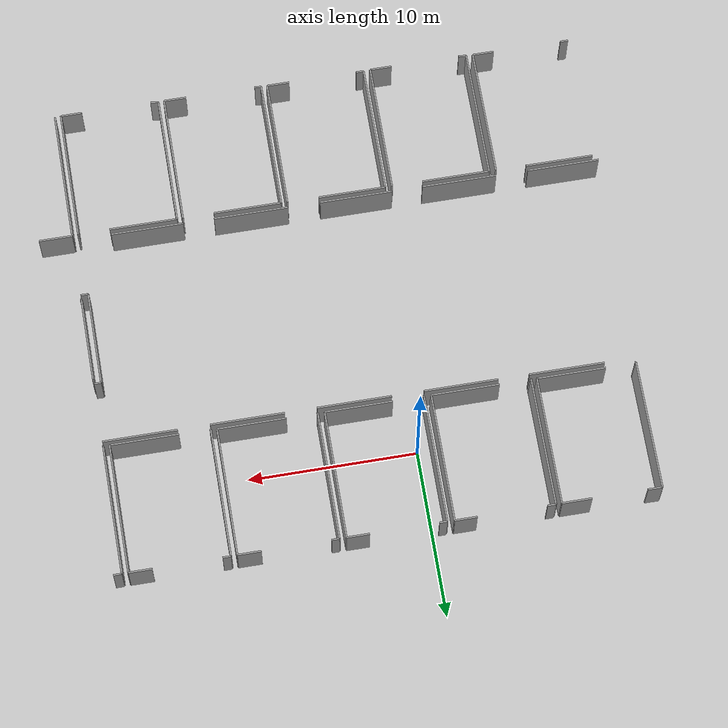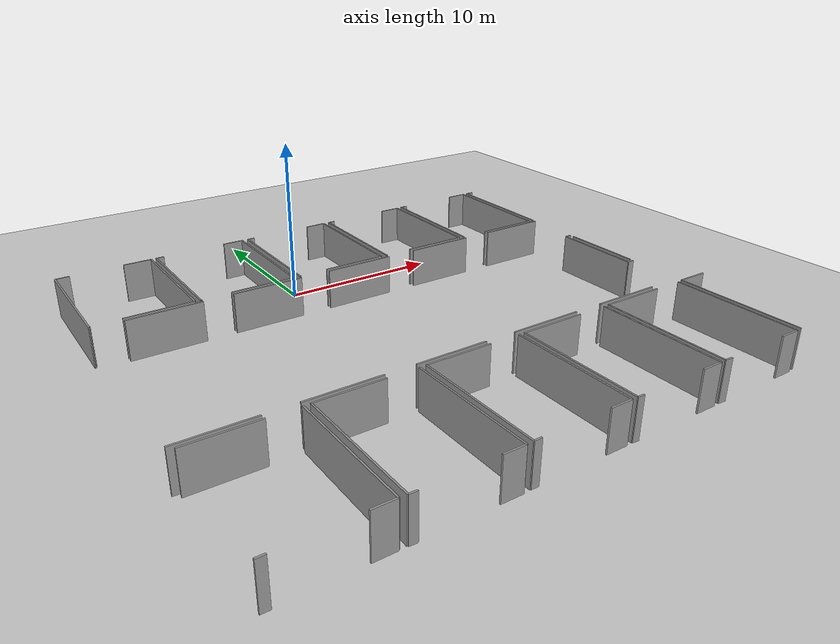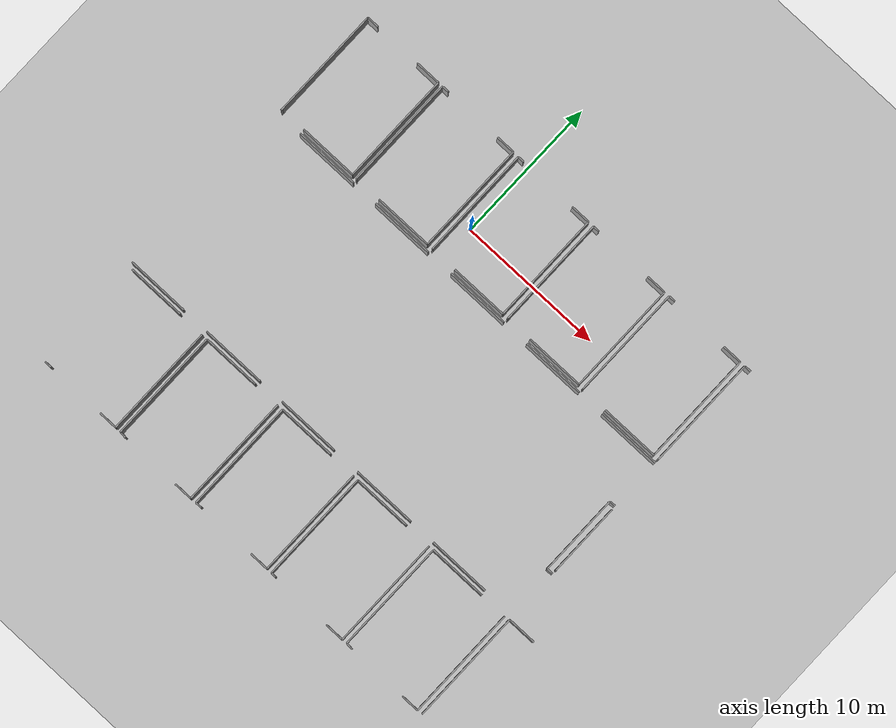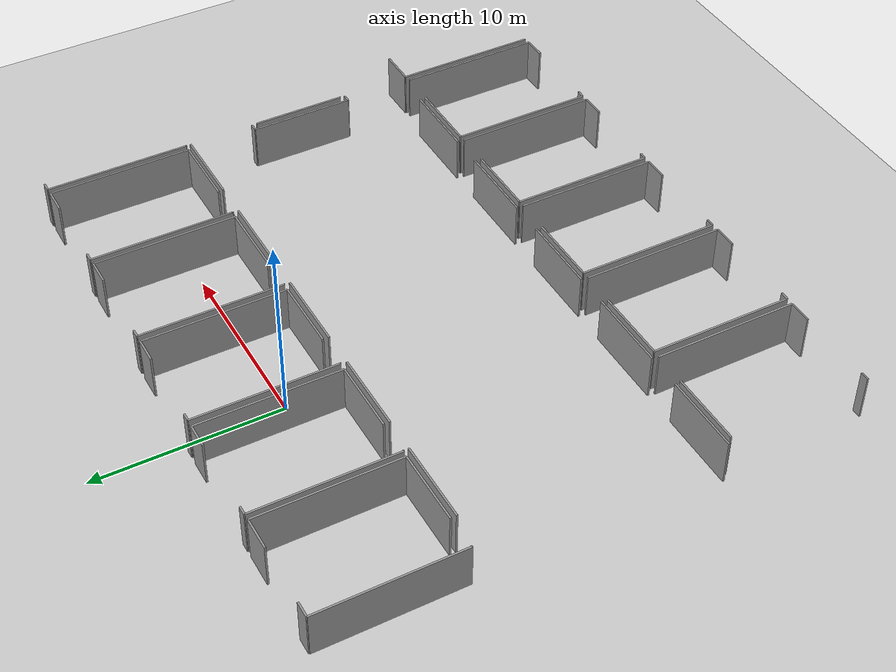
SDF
<sdf version="1.6">
 <world name="default">
  <model name="ground_plane">
   <static>1</static>
   <link name="link">
    <collision name="collision">
     <geometry><plane><normal>0 0 1</normal><size>100 100</size></plane></geometry>
     <surface><friction><ode><mu>100</mu><mu2>50</mu2></ode></friction></surface>
    </collision>
    <visual name="visual">
     <cast_shadows>0</cast_shadows>
     <geometry><plane><normal>0 0 1</normal><size>100 100</size></plane></geometry>
     <material>
      <script><uri>file://media/materials/scripts/gazebo.material</uri><name>Gazebo/Grey</name></script>
     </material>
    </visual>
   </link>
  </model>
  <model name="0510035343_A_40_1_102">
   <static>1</static>
   <link name="Wall_278">
    <collision name="Wall_278_Collision">
     <geometry><box><size>4.46856453712 0.1 2.5</size></box></geometry>
     <pose>2.23428226856 0 1.25 0 0 0</pose>
    </collision>
    <visual name="Wall_278_Visual">
     <pose>2.23428226856 0 1.25 0 0 0</pose>
     <geometry><box><size>4.46856453712 0.1 2.5</size></box></geometry>
     <material>
      <script><uri>file://media/materials/scripts/gazebo.material</uri><name>Gazebo/Grey</name></script>
      <ambient>1 1 1 1</ambient>
     </material>
    </visual>
    <pose>105.245104573 -27.2219365895 0 0 0 0.0</pose>
   </link>
   <link name="Wall_279">
    <collision name="Wall_279_Collision">
     <geometry><box><size>4.39239582342 0.1 2.5</size></box></geometry>
     <pose>2.19619791171 0 1.25 0 0 0</pose>
    </collision>
    <visual name="Wall_279_Visual">
     <pose>2.19619791171 0 1.25 0 0 0</pose>
     <geometry><box><size>4.39239582342 0.1 2.5</size></box></geometry>
     <material>
      <script><uri>file://media/materials/scripts/gazebo.material</uri><name>Gazebo/Grey</name></script>
      <ambient>1 1 1 1</ambient>
     </material>
    </visual>
    <pose>111.541718239 -27.2219365895 0 0 0 0.0</pose>
   </link>
   <link name="Wall_280">
    <collision name="Wall_280_Collision">
     <geometry><box><size>4.39239582342 0.1 2.5</size></box></geometry>
     <pose>2.19619791171 0 1.25 0 0 0</pose>
    </collision>
    <visual name="Wall_280_Visual">
     <pose>2.19619791171 0 1.25 0 0 0</pose>
     <geometry><box><size>4.39239582342 0.1 2.5</size></box></geometry>
     <material>
      <script><uri>file://media/materials/scripts/gazebo.material</uri><name>Gazebo/Grey</name></script>
      <ambient>1 1 1 1</ambient>
     </material>
    </visual>
    <pose>117.838331905 -27.2219365895 0 0 0 0.0</pose>
   </link>
   <link name="Wall_281">
    <collision name="Wall_281_Collision">
     <geometry><box><size>4.36700625218 0.1 2.5</size></box></geometry>
     <pose>2.18350312609 0 1.25 0 0 0</pose>
    </collision>
    <visual name="Wall_281_Visual">
     <pose>2.18350312609 0 1.25 0 0 0</pose>
     <geometry><box><size>4.36700625218 0.1 2.5</size></box></geometry>
     <material>
      <script><uri>file://media/materials/scripts/gazebo.material</uri><name>Gazebo/Grey</name></script>
      <ambient>1 1 1 1</ambient>
     </material>
    </visual>
    <pose>124.134945571 -27.2219365895 0 0 0 0.0</pose>
   </link>
   <link name="Wall_282">
    <collision name="Wall_282_Collision">
     <geometry><box><size>4.39239582342 0.1 2.5</size></box></geometry>
     <pose>2.19619791171 0 1.25 0 0 0</pose>
    </collision>
    <visual name="Wall_282_Visual">
     <pose>2.19619791171 0 1.25 0 0 0</pose>
     <geometry><box><size>4.39239582342 0.1 2.5</size></box></geometry>
     <material>
      <script><uri>file://media/materials/scripts/gazebo.material</uri><name>Gazebo/Grey</name></script>
      <ambient>1 1 1 1</ambient>
     </material>
    </visual>
    <pose>130.406169666 -27.2219365895 0 0 0 0.0</pose>
   </link>
   <link name="Wall_286">
    <collision name="Wall_286_Collision">
     <geometry><box><size>0.419435716779 0.1 2.5</size></box></geometry>
     <pose>0.20971785839 0 1.25 0 0 0</pose>
    </collision>
    <visual name="Wall_286_Visual">
     <pose>0.20971785839 0 1.25 0 0 0</pose>
     <geometry><box><size>0.419435716779 0.1 2.5</size></box></geometry>
     <material>
      <script><uri>file://media/materials/scripts/gazebo.material</uri><name>Gazebo/Grey</name></script>
      <ambient>1 1 1 1</ambient>
     </material>
    </visual>
    <pose>134.788663556 -30.8206544162 0 0 0 3.14159265359</pose>
   </link>
   <link name="Wall_287">
    <collision name="Wall_287_Collision">
     <geometry><box><size>5.60779459837 0.1 2.5</size></box></geometry>
     <pose>2.80389729918 0 1.25 0 0 0</pose>
    </collision>
    <visual name="Wall_287_Visual">
     <pose>2.80389729918 0 1.25 0 0 0</pose>
     <geometry><box><size>5.60779459837 0.1 2.5</size></box></geometry>
     <material>
      <script><uri>file://media/materials/scripts/gazebo.material</uri><name>Gazebo/Grey</name></script>
      <ambient>1 1 1 1</ambient>
     </material>
    </visual>
    <pose>134.36922784 -30.8206544162 0 0 0 -1.57079632679</pose>
   </link>
   <link name="Wall_288">
    <collision name="Wall_288_Collision">
     <geometry><box><size>0.441524643753 0.1 2.5</size></box></geometry>
     <pose>0.220762321876 0 1.25 0 0 0</pose>
    </collision>
    <visual name="Wall_288_Visual">
     <pose>0.220762321876 0 1.25 0 0 0</pose>
     <geometry><box><size>0.441524643753 0.1 2.5</size></box></geometry>
     <material>
      <script><uri>file://media/materials/scripts/gazebo.material</uri><name>Gazebo/Grey</name></script>
      <ambient>1 1 1 1</ambient>
     </material>
    </visual>
    <pose>134.36922784 -36.4284490146 0 0 0 0.0</pose>
   </link>
   <link name="Wall_293">
    <collision name="Wall_293_Collision">
     <geometry><box><size>4.31622710971 0.1 2.5</size></box></geometry>
     <pose>2.15811355486 0 1.25 0 0 0</pose>
    </collision>
    <visual name="Wall_293_Visual">
     <pose>2.15811355486 0 1.25 0 0 0</pose>
     <geometry><box><size>4.31622710971 0.1 2.5</size></box></geometry>
     <material>
      <script><uri>file://media/materials/scripts/gazebo.material</uri><name>Gazebo/Grey</name></script>
      <ambient>1 1 1 1</ambient>
     </material>
    </visual>
    <pose>132.513504078 -39.9675013488 0 0 0 3.14159265359</pose>
   </link>
   <link name="Wall_294">
    <collision name="Wall_294_Collision">
     <geometry><box><size>4.44317496588 0.1 2.5</size></box></geometry>
     <pose>2.22158748294 0 1.25 0 0 0</pose>
    </collision>
    <visual name="Wall_294_Visual">
     <pose>2.22158748294 0 1.25 0 0 0</pose>
     <geometry><box><size>4.44317496588 0.1 2.5</size></box></geometry>
     <material>
      <script><uri>file://media/materials/scripts/gazebo.material</uri><name>Gazebo/Grey</name></script>
      <ambient>1 1 1 1</ambient>
     </material>
    </visual>
    <pose>126.343838268 -39.9675013488 0 0 0 3.14159265359</pose>
   </link>
   <link name="Wall_295">
    <collision name="Wall_295_Collision">
     <geometry><box><size>4.34161668095 0.1 2.5</size></box></geometry>
     <pose>2.17080834047 0 1.25 0 0 0</pose>
    </collision>
    <visual name="Wall_295_Visual">
     <pose>2.17080834047 0 1.25 0 0 0</pose>
     <geometry><box><size>4.34161668095 0.1 2.5</size></box></geometry>
     <material>
      <script><uri>file://media/materials/scripts/gazebo.material</uri><name>Gazebo/Grey</name></script>
      <ambient>1 1 1 1</ambient>
     </material>
    </visual>
    <pose>119.971055889 -39.9675013488 0 0 0 3.14159265359</pose>
   </link>
   <link name="Wall_296">
    <collision name="Wall_296_Collision">
     <geometry><box><size>4.46856453712 0.1 2.5</size></box></geometry>
     <pose>2.23428226856 0 1.25 0 0 0</pose>
    </collision>
    <visual name="Wall_296_Visual">
     <pose>2.23428226856 0 1.25 0 0 0</pose>
     <geometry><box><size>4.46856453712 0.1 2.5</size></box></geometry>
     <material>
      <script><uri>file://media/materials/scripts/gazebo.material</uri><name>Gazebo/Grey</name></script>
      <ambient>1 1 1 1</ambient>
     </material>
    </visual>
    <pose>113.801390079 -39.9675013488 0 0 0 3.14159265359</pose>
   </link>
   <link name="Wall_297">
    <collision name="Wall_297_Collision">
     <geometry><box><size>4.30530959408 0.1 2.5</size></box></geometry>
     <pose>2.15265479704 0 1.25 0 0 0</pose>
    </collision>
    <visual name="Wall_297_Visual">
     <pose>2.15265479704 0 1.25 0 0 0</pose>
     <geometry><box><size>4.30530959408 0.1 2.5</size></box></geometry>
     <material>
      <script><uri>file://media/materials/scripts/gazebo.material</uri><name>Gazebo/Grey</name></script>
      <ambient>1 1 1 1</ambient>
     </material>
    </visual>
    <pose>107.412104478 -39.9675013488 0 0 0 3.14159265359</pose>
   </link>
   <link name="Wall_307">
    <collision name="Wall_307_Collision">
     <geometry><box><size>7.77581008601 0.1 2.5</size></box></geometry>
     <pose>3.887905043 0 1.25 0 0 0</pose>
    </collision>
    <visual name="Wall_307_Visual">
     <pose>3.887905043 0 1.25 0 0 0</pose>
     <geometry><box><size>7.77581008601 0.1 2.5</size></box></geometry>
     <material>
      <script><uri>file://media/materials/scripts/gazebo.material</uri><name>Gazebo/Grey</name></script>
      <ambient>1 1 1 1</ambient>
     </material>
    </visual>
    <pose>103.433812561 -26.9776889143 0 0 0 1.57079632679</pose>
   </link>
   <link name="Wall_308">
    <collision name="Wall_308_Collision">
     <geometry><box><size>0.845726617792 0.1 2.5</size></box></geometry>
     <pose>0.422863308896 0 1.25 0 0 0</pose>
    </collision>
    <visual name="Wall_308_Visual">
     <pose>0.422863308896 0 1.25 0 0 0</pose>
     <geometry><box><size>0.845726617792 0.1 2.5</size></box></geometry>
     <material>
      <script><uri>file://media/materials/scripts/gazebo.material</uri><name>Gazebo/Grey</name></script>
      <ambient>1 1 1 1</ambient>
     </material>
    </visual>
    <pose>103.433812561 -19.2018788283 0 0 0 0.0</pose>
   </link>
   <link name="Wall_309">
    <collision name="Wall_309_Collision">
     <geometry><box><size>1.76711415786 0.1 2.5</size></box></geometry>
     <pose>0.88355707893 0 1.25 0 0 0</pose>
    </collision>
    <visual name="Wall_309_Visual">
     <pose>0.88355707893 0 1.25 0 0 0</pose>
     <geometry><box><size>1.76711415786 0.1 2.5</size></box></geometry>
     <material>
      <script><uri>file://media/materials/scripts/gazebo.material</uri><name>Gazebo/Grey</name></script>
      <ambient>1 1 1 1</ambient>
     </material>
    </visual>
    <pose>107.548954267 -19.2018788283 0 0 0 0.0</pose>
   </link>
   <link name="Wall_310">
    <collision name="Wall_310_Collision">
     <geometry><box><size>7.70014916373 0.1 2.5</size></box></geometry>
     <pose>3.85007458187 0 1.25 0 0 0</pose>
    </collision>
    <visual name="Wall_310_Visual">
     <pose>3.85007458187 0 1.25 0 0 0</pose>
     <geometry><box><size>7.70014916373 0.1 2.5</size></box></geometry>
     <material>
      <script><uri>file://media/materials/scripts/gazebo.material</uri><name>Gazebo/Grey</name></script>
      <ambient>1 1 1 1</ambient>
     </material>
    </visual>
    <pose>109.316068425 -19.2018788283 0 0 0 -1.57079632679</pose>
   </link>
   <link name="Wall_311">
    <collision name="Wall_311_Collision">
     <geometry><box><size>4.07731124441 0.1 2.5</size></box></geometry>
     <pose>2.0386556222 0 1.25 0 0 0</pose>
    </collision>
    <visual name="Wall_311_Visual">
     <pose>2.0386556222 0 1.25 0 0 0</pose>
     <geometry><box><size>4.07731124441 0.1 2.5</size></box></geometry>
     <material>
      <script><uri>file://media/materials/scripts/gazebo.material</uri><name>Gazebo/Grey</name></script>
      <ambient>1 1 1 1</ambient>
     </material>
    </visual>
    <pose>109.316068425 -26.902027992 0 0 0 3.14159265359</pose>
   </link>
   <link name="Wall_312">
    <collision name="Wall_312_Collision">
     <geometry><box><size>0.0843656140511 0.1 2.5</size></box></geometry>
     <pose>0.0421828070256 0 1.25 0 0 0</pose>
    </collision>
    <visual name="Wall_312_Visual">
     <pose>0.0421828070256 0 1.25 0 0 0</pose>
     <geometry><box><size>0.0843656140511 0.1 2.5</size></box></geometry>
     <material>
      <script><uri>file://media/materials/scripts/gazebo.material</uri><name>Gazebo/Grey</name></script>
      <ambient>1 1 1 1</ambient>
     </material>
    </visual>
    <pose>103.471135231 -26.902027992 0 0 0 -2.02906040772</pose>
   </link>
   <link name="Wall_313">
    <collision name="Wall_313_Collision">
     <geometry><box><size>7.75829128186 0.1 2.5</size></box></geometry>
     <pose>3.87914564093 0 1.25 0 0 0</pose>
    </collision>
    <visual name="Wall_313_Visual">
     <pose>3.87914564093 0 1.25 0 0 0</pose>
     <geometry><box><size>7.75829128186 0.1 2.5</size></box></geometry>
     <material>
      <script><uri>file://media/materials/scripts/gazebo.material</uri><name>Gazebo/Grey</name></script>
      <ambient>1 1 1 1</ambient>
     </material>
    </visual>
    <pose>109.657050367 -26.9525532388 0 0 0 1.57079632679</pose>
   </link>
   <link name="Wall_314">
    <collision name="Wall_314_Collision">
     <geometry><box><size>0.49230378622 0.1 2.5</size></box></geometry>
     <pose>0.24615189311 0 1.25 0 0 0</pose>
    </collision>
    <visual name="Wall_314_Visual">
     <pose>0.24615189311 0 1.25 0 0 0</pose>
     <geometry><box><size>0.49230378622 0.1 2.5</size></box></geometry>
     <material>
      <script><uri>file://media/materials/scripts/gazebo.material</uri><name>Gazebo/Grey</name></script>
      <ambient>1 1 1 1</ambient>
     </material>
    </visual>
    <pose>109.657050367 -19.1942619569 0 0 0 0.0</pose>
   </link>
   <link name="Wall_315">
    <collision name="Wall_315_Collision">
     <geometry><box><size>1.32101939129 0.1 2.5</size></box></geometry>
     <pose>0.660509695643 0 1.25 0 0 0</pose>
    </collision>
    <visual name="Wall_315_Visual">
     <pose>0.660509695643 0 1.25 0 0 0</pose>
     <geometry><box><size>1.32101939129 0.1 2.5</size></box></geometry>
     <material>
      <script><uri>file://media/materials/scripts/gazebo.material</uri><name>Gazebo/Grey</name></script>
      <ambient>1 1 1 1</ambient>
     </material>
    </visual>
    <pose>114.242914723 -19.1942619569 0 0 0 0.0</pose>
   </link>
   <link name="Wall_316">
    <collision name="Wall_316_Collision">
     <geometry><box><size>7.7158906979 0.1 2.5</size></box></geometry>
     <pose>3.85794534895 0 1.25 0 0 0</pose>
    </collision>
    <visual name="Wall_316_Visual">
     <pose>3.85794534895 0 1.25 0 0 0</pose>
     <geometry><box><size>7.7158906979 0.1 2.5</size></box></geometry>
     <material>
      <script><uri>file://media/materials/scripts/gazebo.material</uri><name>Gazebo/Grey</name></script>
      <ambient>1 1 1 1</ambient>
     </material>
    </visual>
    <pose>115.563934114 -19.1942619569 0 0 0 -1.57079632679</pose>
   </link>
   <link name="Wall_317">
    <collision name="Wall_317_Collision">
     <geometry><box><size>4.02881716335 0.1 2.5</size></box></geometry>
     <pose>2.01440858168 0 1.25 0 0 0</pose>
    </collision>
    <visual name="Wall_317_Visual">
     <pose>2.01440858168 0 1.25 0 0 0</pose>
     <geometry><box><size>4.02881716335 0.1 2.5</size></box></geometry>
     <material>
      <script><uri>file://media/materials/scripts/gazebo.material</uri><name>Gazebo/Grey</name></script>
      <ambient>1 1 1 1</ambient>
     </material>
    </visual>
    <pose>115.563934114 -26.9101526548 0 0 0 3.14159265359</pose>
   </link>
   <link name="Wall_318">
    <collision name="Wall_318_Collision">
     <geometry><box><size>0.0707353636834 0.1 2.5</size></box></geometry>
     <pose>0.0353676818417 0 1.25 0 0 0</pose>
    </collision>
    <visual name="Wall_318_Visual">
     <pose>0.0353676818417 0 1.25 0 0 0</pose>
     <geometry><box><size>0.0707353636834 0.1 2.5</size></box></geometry>
     <material>
      <script><uri>file://media/materials/scripts/gazebo.material</uri><name>Gazebo/Grey</name></script>
      <ambient>1 1 1 1</ambient>
     </material>
    </visual>
    <pose>109.71366911 -26.9101526548 0 0 0 -2.49880941976</pose>
   </link>
   <link name="Wall_319">
    <collision name="Wall_319_Collision">
     <geometry><box><size>7.72299977784 0.1 2.5</size></box></geometry>
     <pose>3.86149988892 0 1.25 0 0 0</pose>
    </collision>
    <visual name="Wall_319_Visual">
     <pose>3.86149988892 0 1.25 0 0 0</pose>
     <geometry><box><size>7.72299977784 0.1 2.5</size></box></geometry>
     <material>
      <script><uri>file://media/materials/scripts/gazebo.material</uri><name>Gazebo/Grey</name></script>
      <ambient>1 1 1 1</ambient>
     </material>
    </visual>
    <pose>115.984893205 -26.9317337903 0 0 0 1.57079632679</pose>
   </link>
   <link name="Wall_320">
    <collision name="Wall_320_Collision">
     <geometry><box><size>0.449649306547 0.1 2.5</size></box></geometry>
     <pose>0.224824653274 0 1.25 0 0 0</pose>
    </collision>
    <visual name="Wall_320_Visual">
     <pose>0.224824653274 0 1.25 0 0 0</pose>
     <geometry><box><size>0.449649306547 0.1 2.5</size></box></geometry>
     <material>
      <script><uri>file://media/materials/scripts/gazebo.material</uri><name>Gazebo/Grey</name></script>
      <ambient>1 1 1 1</ambient>
     </material>
    </visual>
    <pose>115.984893205 -19.2087340125 0 0 0 0.0</pose>
   </link>
   <link name="Wall_321">
    <collision name="Wall_321_Collision">
     <geometry><box><size>1.34996350249 0.1 2.5</size></box></geometry>
     <pose>0.674981751246 0 1.25 0 0 0</pose>
    </collision>
    <visual name="Wall_321_Visual">
     <pose>0.674981751246 0 1.25 0 0 0</pose>
     <geometry><box><size>1.34996350249 0.1 2.5</size></box></geometry>
     <material>
      <script><uri>file://media/materials/scripts/gazebo.material</uri><name>Gazebo/Grey</name></script>
      <ambient>1 1 1 1</ambient>
     </material>
    </visual>
    <pose>120.484940811 -19.2087340125 0 0 0 0.0</pose>
   </link>
   <link name="Wall_322">
    <collision name="Wall_322_Collision">
     <geometry><box><size>7.69304008379 0.1 2.5</size></box></geometry>
     <pose>3.84652004189 0 1.25 0 0 0</pose>
    </collision>
    <visual name="Wall_322_Visual">
     <pose>3.84652004189 0 1.25 0 0 0</pose>
     <geometry><box><size>7.69304008379 0.1 2.5</size></box></geometry>
     <material>
      <script><uri>file://media/materials/scripts/gazebo.material</uri><name>Gazebo/Grey</name></script>
      <ambient>1 1 1 1</ambient>
     </material>
    </visual>
    <pose>121.834904313 -19.2087340125 0 0 0 -1.57079632679</pose>
   </link>
   <link name="Wall_323">
    <collision name="Wall_323_Collision">
     <geometry><box><size>3.99200228506 0.1 2.5</size></box></geometry>
     <pose>1.99600114253 0 1.25 0 0 0</pose>
    </collision>
    <visual name="Wall_323_Visual">
     <pose>1.99600114253 0 1.25 0 0 0</pose>
     <geometry><box><size>3.99200228506 0.1 2.5</size></box></geometry>
     <material>
      <script><uri>file://media/materials/scripts/gazebo.material</uri><name>Gazebo/Grey</name></script>
      <ambient>1 1 1 1</ambient>
     </material>
    </visual>
    <pose>121.834904313 -26.9017740963 0 0 0 3.14159265359</pose>
   </link>
   <link name="Wall_324">
    <collision name="Wall_324_Collision">
     <geometry><box><size>0.0453330065608 0.1 2.5</size></box></geometry>
     <pose>0.0226665032804 0 1.25 0 0 0</pose>
    </collision>
    <visual name="Wall_324_Visual">
     <pose>0.0226665032804 0 1.25 0 0 0</pose>
     <geometry><box><size>0.0453330065608 0.1 2.5</size></box></geometry>
     <material>
      <script><uri>file://media/materials/scripts/gazebo.material</uri><name>Gazebo/Grey</name></script>
      <ambient>1 1 1 1</ambient>
     </material>
    </visual>
    <pose>116.018915231 -26.9017740963 0 0 0 -2.41960144216</pose>
   </link>
   <link name="Wall_325">
    <collision name="Wall_325_Collision">
     <geometry><box><size>7.71563680218 0.1 2.5</size></box></geometry>
     <pose>3.85781840109 0 1.25 0 0 0</pose>
    </collision>
    <visual name="Wall_325_Visual">
     <pose>3.85781840109 0 1.25 0 0 0</pose>
     <geometry><box><size>7.71563680218 0.1 2.5</size></box></geometry>
     <material>
      <script><uri>file://media/materials/scripts/gazebo.material</uri><name>Gazebo/Grey</name></script>
      <ambient>1 1 1 1</ambient>
     </material>
    </visual>
    <pose>122.242153036 -26.9271636675 0 0 0 1.57079632679</pose>
   </link>
   <link name="Wall_326">
    <collision name="Wall_326_Collision">
     <geometry><box><size>0.454219429369 0.1 2.5</size></box></geometry>
     <pose>0.227109714685 0 1.25 0 0 0</pose>
    </collision>
    <visual name="Wall_326_Visual">
     <pose>0.227109714685 0 1.25 0 0 0</pose>
     <geometry><box><size>0.454219429369 0.1 2.5</size></box></geometry>
     <material>
      <script><uri>file://media/materials/scripts/gazebo.material</uri><name>Gazebo/Grey</name></script>
      <ambient>1 1 1 1</ambient>
     </material>
    </visual>
    <pose>122.242153036 -19.2115268653 0 0 0 0.0</pose>
   </link>
   <link name="Wall_327">
    <collision name="Wall_327_Collision">
     <geometry><box><size>1.39363356501 0.1 2.5</size></box></geometry>
     <pose>0.696816782507 0 1.25 0 0 0</pose>
    </collision>
    <visual name="Wall_327_Visual">
     <pose>0.696816782507 0 1.25 0 0 0</pose>
     <geometry><box><size>1.39363356501 0.1 2.5</size></box></geometry>
     <material>
      <script><uri>file://media/materials/scripts/gazebo.material</uri><name>Gazebo/Grey</name></script>
      <ambient>1 1 1 1</ambient>
     </material>
    </visual>
    <pose>126.752864261 -19.2115268653 0 0 0 0.0</pose>
   </link>
   <link name="Wall_328">
    <collision name="Wall_328_Collision">
     <geometry><box><size>7.68212256816 0.1 2.5</size></box></geometry>
     <pose>3.84106128408 0 1.25 0 0 0</pose>
    </collision>
    <visual name="Wall_328_Visual">
     <pose>3.84106128408 0 1.25 0 0 0</pose>
     <geometry><box><size>7.68212256816 0.1 2.5</size></box></geometry>
     <material>
      <script><uri>file://media/materials/scripts/gazebo.material</uri><name>Gazebo/Grey</name></script>
      <ambient>1 1 1 1</ambient>
     </material>
    </visual>
    <pose>128.146497826 -19.2115268653 0 0 0 -1.57079632679</pose>
   </link>
   <link name="Wall_329">
    <collision name="Wall_329_Collision">
     <geometry><box><size>4.06131581453 0.1 2.5</size></box></geometry>
     <pose>2.03065790726 0 1.25 0 0 0</pose>
    </collision>
    <visual name="Wall_329_Visual">
     <pose>2.03065790726 0 1.25 0 0 0</pose>
     <geometry><box><size>4.06131581453 0.1 2.5</size></box></geometry>
     <material>
      <script><uri>file://media/materials/scripts/gazebo.material</uri><name>Gazebo/Grey</name></script>
      <ambient>1 1 1 1</ambient>
     </material>
    </visual>
    <pose>128.146497826 -26.8936494335 0 0 0 3.14159265359</pose>
   </link>
   <link name="Wall_330">
    <collision name="Wall_330_Collision">
     <geometry><box><size>0.0439525672201 0.1 2.5</size></box></geometry>
     <pose>0.02197628361 0 1.25 0 0 0</pose>
    </collision>
    <visual name="Wall_330_Visual">
     <pose>0.02197628361 0 1.25 0 0 0</pose>
     <geometry><box><size>0.0439525672201 0.1 2.5</size></box></geometry>
     <material>
      <script><uri>file://media/materials/scripts/gazebo.material</uri><name>Gazebo/Grey</name></script>
      <ambient>1 1 1 1</ambient>
     </material>
    </visual>
    <pose>122.270589355 -26.8936494335 0 0 0 -2.27441010957</pose>
   </link>
   <link name="Wall_331">
    <collision name="Wall_331_Collision">
     <geometry><box><size>7.73747183344 0.1 2.5</size></box></geometry>
     <pose>3.86873591672 0 1.25 0 0 0</pose>
    </collision>
    <visual name="Wall_331_Visual">
     <pose>3.86873591672 0 1.25 0 0 0</pose>
     <geometry><box><size>7.73747183344 0.1 2.5</size></box></geometry>
     <material>
      <script><uri>file://media/materials/scripts/gazebo.material</uri><name>Gazebo/Grey</name></script>
      <ambient>1 1 1 1</ambient>
     </material>
    </visual>
    <pose>128.512615443 -26.9317337903 0 0 0 1.57079632679</pose>
   </link>
   <link name="Wall_332">
    <collision name="Wall_332_Collision">
     <geometry><box><size>0.479101209178 0.1 2.5</size></box></geometry>
     <pose>0.239550604589 0 1.25 0 0 0</pose>
    </collision>
    <visual name="Wall_332_Visual">
     <pose>0.239550604589 0 1.25 0 0 0</pose>
     <geometry><box><size>0.479101209178 0.1 2.5</size></box></geometry>
     <material>
      <script><uri>file://media/materials/scripts/gazebo.material</uri><name>Gazebo/Grey</name></script>
      <ambient>1 1 1 1</ambient>
     </material>
    </visual>
    <pose>128.512615443 -19.1942619569 0 0 0 0.0</pose>
   </link>
   <link name="Wall_333">
    <collision name="Wall_333_Collision">
     <geometry><box><size>1.37916150941 0.1 2.5</size></box></geometry>
     <pose>0.689580754705 0 1.25 0 0 0</pose>
    </collision>
    <visual name="Wall_333_Visual">
     <pose>0.689580754705 0 1.25 0 0 0</pose>
     <geometry><box><size>1.37916150941 0.1 2.5</size></box></geometry>
     <material>
      <script><uri>file://media/materials/scripts/gazebo.material</uri><name>Gazebo/Grey</name></script>
      <ambient>1 1 1 1</ambient>
     </material>
    </visual>
    <pose>133.041861056 -19.1942619569 0 0 0 0.0</pose>
   </link>
   <link name="Wall_334">
    <collision name="Wall_334_Collision">
     <geometry><box><size>7.75194388905 0.1 2.5</size></box></geometry>
     <pose>3.87597194452 0 1.25 0 0 0</pose>
    </collision>
    <visual name="Wall_334_Visual">
     <pose>3.87597194452 0 1.25 0 0 0</pose>
     <geometry><box><size>7.75194388905 0.1 2.5</size></box></geometry>
     <material>
      <script><uri>file://media/materials/scripts/gazebo.material</uri><name>Gazebo/Grey</name></script>
      <ambient>1 1 1 1</ambient>
     </material>
    </visual>
    <pose>134.421022565 -19.1942619569 0 0 0 -1.57079632679</pose>
   </link>
   <link name="Wall_335">
    <collision name="Wall_335_Collision">
     <geometry><box><size>4.05014440319 0.1 2.5</size></box></geometry>
     <pose>2.02507220159 0 1.25 0 0 0</pose>
    </collision>
    <visual name="Wall_335_Visual">
     <pose>2.02507220159 0 1.25 0 0 0</pose>
     <geometry><box><size>4.05014440319 0.1 2.5</size></box></geometry>
     <material>
      <script><uri>file://media/materials/scripts/gazebo.material</uri><name>Gazebo/Grey</name></script>
      <ambient>1 1 1 1</ambient>
     </material>
    </visual>
    <pose>134.421022565 -26.9462058459 0 0 0 3.14159265359</pose>
   </link>
   <link name="Wall_336">
    <collision name="Wall_336_Collision">
     <geometry><box><size>0.0523129919716 0.1 2.5</size></box></geometry>
     <pose>0.0261564959858 0 1.25 0 0 0</pose>
    </collision>
    <visual name="Wall_336_Visual">
     <pose>0.0261564959858 0 1.25 0 0 0</pose>
     <geometry><box><size>0.0523129919716 0.1 2.5</size></box></geometry>
     <material>
      <script><uri>file://media/materials/scripts/gazebo.material</uri><name>Gazebo/Grey</name></script>
      <ambient>1 1 1 1</ambient>
     </material>
    </visual>
    <pose>128.562886794 -26.9462058459 0 0 0 2.86129299725</pose>
   </link>
   <link name="Wall_337">
    <collision name="Wall_337_Collision">
     <geometry><box><size>7.7633691961 0.1 2.5</size></box></geometry>
     <pose>3.88168459805 0 1.25 0 0 0</pose>
    </collision>
    <visual name="Wall_337_Visual">
     <pose>3.88168459805 0 1.25 0 0 0</pose>
     <geometry><box><size>7.7633691961 0.1 2.5</size></box></geometry>
     <material>
      <script><uri>file://media/materials/scripts/gazebo.material</uri><name>Gazebo/Grey</name></script>
      <ambient>1 1 1 1</ambient>
     </material>
    </visual>
    <pose>134.791456409 -26.9515376559 0 0 0 1.57079632679</pose>
   </link>
   <link name="Wall_338">
    <collision name="Wall_338_Collision">
     <geometry><box><size>0.489764829096 0.1 2.5</size></box></geometry>
     <pose>0.244882414548 0 1.25 0 0 0</pose>
    </collision>
    <visual name="Wall_338_Visual">
     <pose>0.244882414548 0 1.25 0 0 0</pose>
     <geometry><box><size>0.489764829096 0.1 2.5</size></box></geometry>
     <material>
      <script><uri>file://media/materials/scripts/gazebo.material</uri><name>Gazebo/Grey</name></script>
      <ambient>1 1 1 1</ambient>
     </material>
    </visual>
    <pose>134.791456409 -19.1881684598 0 0 0 0.0</pose>
   </link>
   <link name="Wall_341">
    <collision name="Wall_341_Collision">
     <geometry><box><size>0.0360674922991 0.1 2.5</size></box></geometry>
     <pose>0.0180337461496 0 1.25 0 0 0</pose>
    </collision>
    <visual name="Wall_341_Visual">
     <pose>0.0180337461496 0 1.25 0 0 0</pose>
     <geometry><box><size>0.0360674922991 0.1 2.5</size></box></geometry>
     <material>
      <script><uri>file://media/materials/scripts/gazebo.material</uri><name>Gazebo/Grey</name></script>
      <ambient>1 1 1 1</ambient>
     </material>
    </visual>
    <pose>134.8275096 -26.9525532388 0 0 0 3.1134310866</pose>
   </link>
   <link name="Wall_342">
    <collision name="Wall_342_Collision">
     <geometry><box><size>5.05836427687 0.1 2.5</size></box></geometry>
     <pose>2.52918213844 0 1.25 0 0 0</pose>
    </collision>
    <visual name="Wall_342_Visual">
     <pose>2.52918213844 0 1.25 0 0 0</pose>
     <geometry><box><size>5.05836427687 0.1 2.5</size></box></geometry>
     <material>
      <script><uri>file://media/materials/scripts/gazebo.material</uri><name>Gazebo/Grey</name></script>
      <ambient>1 1 1 1</ambient>
     </material>
    </visual>
    <pose>134.806436256 -36.1605890381 0 0 0 1.57079632679</pose>
   </link>
   <link name="Wall_346">
    <collision name="Wall_346_Collision">
     <geometry><box><size>0.057810219421 0.1 2.5</size></box></geometry>
     <pose>0.0289051097105 0 1.25 0 0 0</pose>
    </collision>
    <visual name="Wall_346_Visual">
     <pose>0.0289051097105 0 1.25 0 0 0</pose>
     <geometry><box><size>0.057810219421 0.1 2.5</size></box></geometry>
     <material>
      <script><uri>file://media/materials/scripts/gazebo.material</uri><name>Gazebo/Grey</name></script>
      <ambient>1 1 1 1</ambient>
     </material>
    </visual>
    <pose>134.84705957 -36.1194579327 0 0 0 -2.34998338994</pose>
   </link>
   <link name="Wall_347">
    <collision name="Wall_347_Collision">
     <geometry><box><size>7.81313275572 0.1 2.5</size></box></geometry>
     <pose>3.90656637786 0 1.25 0 0 0</pose>
    </collision>
    <visual name="Wall_347_Visual">
     <pose>3.90656637786 0 1.25 0 0 0</pose>
     <geometry><box><size>7.81313275572 0.1 2.5</size></box></geometry>
     <material>
      <script><uri>file://media/materials/scripts/gazebo.material</uri><name>Gazebo/Grey</name></script>
      <ambient>1 1 1 1</ambient>
     </material>
    </visual>
    <pose>134.798311594 -48.0566187439 0 0 0 1.57079632679</pose>
   </link>
   <link name="Wall_348">
    <collision name="Wall_348_Collision">
     <geometry><box><size>1.98876511473 0.1 2.5</size></box></geometry>
     <pose>0.994382557365 0 1.25 0 0 0</pose>
    </collision>
    <visual name="Wall_348_Visual">
     <pose>0.994382557365 0 1.25 0 0 0</pose>
     <geometry><box><size>1.98876511473 0.1 2.5</size></box></geometry>
     <material>
      <script><uri>file://media/materials/scripts/gazebo.material</uri><name>Gazebo/Grey</name></script>
      <ambient>1 1 1 1</ambient>
     </material>
    </visual>
    <pose>134.798311594 -40.2434859881 0 0 0 0.0</pose>
   </link>
   <link name="Wall_352">
    <collision name="Wall_352_Collision">
     <geometry><box><size>7.72934717065 0.1 2.5</size></box></geometry>
     <pose>3.86467358532 0 1.25 0 0 0</pose>
    </collision>
    <visual name="Wall_352_Visual">
     <pose>3.86467358532 0 1.25 0 0 0</pose>
     <geometry><box><size>7.72934717065 0.1 2.5</size></box></geometry>
     <material>
      <script><uri>file://media/materials/scripts/gazebo.material</uri><name>Gazebo/Grey</name></script>
      <ambient>1 1 1 1</ambient>
     </material>
    </visual>
    <pose>128.512615443 -48.0299596941 0 0 0 1.57079632679</pose>
   </link>
   <link name="Wall_353">
    <collision name="Wall_353_Collision">
     <geometry><box><size>4.03998857469 0.1 2.5</size></box></geometry>
     <pose>2.01999428735 0 1.25 0 0 0</pose>
    </collision>
    <visual name="Wall_353_Visual">
     <pose>2.01999428735 0 1.25 0 0 0</pose>
     <geometry><box><size>4.03998857469 0.1 2.5</size></box></geometry>
     <material>
      <script><uri>file://media/materials/scripts/gazebo.material</uri><name>Gazebo/Grey</name></script>
      <ambient>1 1 1 1</ambient>
     </material>
    </visual>
    <pose>128.512615443 -40.3006125234 0 0 0 0.0</pose>
   </link>
   <link name="Wall_354">
    <collision name="Wall_354_Collision">
     <geometry><box><size>7.77809514742 0.1 2.5</size></box></geometry>
     <pose>3.88904757371 0 1.25 0 0 0</pose>
    </collision>
    <visual name="Wall_354_Visual">
     <pose>3.88904757371 0 1.25 0 0 0</pose>
     <geometry><box><size>7.77809514742 0.1 2.5</size></box></geometry>
     <material>
      <script><uri>file://media/materials/scripts/gazebo.material</uri><name>Gazebo/Grey</name></script>
      <ambient>1 1 1 1</ambient>
     </material>
    </visual>
    <pose>134.435494621 -40.3006125234 0 0 0 -1.57079632679</pose>
   </link>
   <link name="Wall_355">
    <collision name="Wall_355_Collision">
     <geometry><box><size>1.27277920594 0.1 2.5</size></box></geometry>
     <pose>0.636389602971 0 1.25 0 0 0</pose>
    </collision>
    <visual name="Wall_355_Visual">
     <pose>0.636389602971 0 1.25 0 0 0</pose>
     <geometry><box><size>1.27277920594 0.1 2.5</size></box></geometry>
     <material>
      <script><uri>file://media/materials/scripts/gazebo.material</uri><name>Gazebo/Grey</name></script>
      <ambient>1 1 1 1</ambient>
     </material>
    </visual>
    <pose>134.435494621 -48.0787076708 0 0 0 3.14159265359</pose>
   </link>
   <link name="Wall_356">
    <collision name="Wall_356_Collision">
     <geometry><box><size>0.481574847636 0.1 2.5</size></box></geometry>
     <pose>0.240787423818 0 1.25 0 0 0</pose>
    </collision>
    <visual name="Wall_356_Visual">
     <pose>0.240787423818 0 1.25 0 0 0</pose>
     <geometry><box><size>0.481574847636 0.1 2.5</size></box></geometry>
     <material>
      <script><uri>file://media/materials/scripts/gazebo.material</uri><name>Gazebo/Grey</name></script>
      <ambient>1 1 1 1</ambient>
     </material>
    </visual>
    <pose>128.991716652 -48.0787076708 0 0 0 3.04019280988</pose>
   </link>
   <link name="Wall_357">
    <collision name="Wall_357_Collision">
     <geometry><box><size>7.70700434796 0.1 2.5</size></box></geometry>
     <pose>3.85350217398 0 1.25 0 0 0</pose>
    </collision>
    <visual name="Wall_357_Visual">
     <pose>3.85350217398 0 1.25 0 0 0</pose>
     <geometry><box><size>7.70700434796 0.1 2.5</size></box></geometry>
     <material>
      <script><uri>file://media/materials/scripts/gazebo.material</uri><name>Gazebo/Grey</name></script>
      <ambient>1 1 1 1</ambient>
     </material>
    </visual>
    <pose>122.2561173 -48.0243739884 0 0 0 1.57079632679</pose>
   </link>
   <link name="Wall_358">
    <collision name="Wall_358_Collision">
     <geometry><box><size>4.05293725602 0.1 2.5</size></box></geometry>
     <pose>2.02646862801 0 1.25 0 0 0</pose>
    </collision>
    <visual name="Wall_358_Visual">
     <pose>2.02646862801 0 1.25 0 0 0</pose>
     <geometry><box><size>4.05293725602 0.1 2.5</size></box></geometry>
     <material>
      <script><uri>file://media/materials/scripts/gazebo.material</uri><name>Gazebo/Grey</name></script>
      <ambient>1 1 1 1</ambient>
     </material>
    </visual>
    <pose>122.2561173 -40.3173696404 0 0 0 0.0</pose>
   </link>
   <link name="Wall_359">
    <collision name="Wall_359_Collision">
     <geometry><box><size>7.73950299914 0.1 2.5</size></box></geometry>
     <pose>3.86975149957 0 1.25 0 0 0</pose>
    </collision>
    <visual name="Wall_359_Visual">
     <pose>3.86975149957 0 1.25 0 0 0</pose>
     <geometry><box><size>7.73950299914 0.1 2.5</size></box></geometry>
     <material>
      <script><uri>file://media/materials/scripts/gazebo.material</uri><name>Gazebo/Grey</name></script>
      <ambient>1 1 1 1</ambient>
     </material>
    </visual>
    <pose>128.164270526 -40.3173696404 0 0 0 -1.57079632679</pose>
   </link>
   <link name="Wall_360">
    <collision name="Wall_360_Collision">
     <geometry><box><size>1.32838236694 0.1 2.5</size></box></geometry>
     <pose>0.664191183471 0 1.25 0 0 0</pose>
    </collision>
    <visual name="Wall_360_Visual">
     <pose>0.664191183471 0 1.25 0 0 0</pose>
     <geometry><box><size>1.32838236694 0.1 2.5</size></box></geometry>
     <material>
      <script><uri>file://media/materials/scripts/gazebo.material</uri><name>Gazebo/Grey</name></script>
      <ambient>1 1 1 1</ambient>
     </material>
    </visual>
    <pose>128.164270526 -48.0568726396 0 0 0 3.14159265359</pose>
   </link>
   <link name="Wall_361">
    <collision name="Wall_361_Collision">
     <geometry><box><size>0.39589010029 0.1 2.5</size></box></geometry>
     <pose>0.197945050145 0 1.25 0 0 0</pose>
    </collision>
    <visual name="Wall_361_Visual">
     <pose>0.197945050145 0 1.25 0 0 0</pose>
     <geometry><box><size>0.39589010029 0.1 2.5</size></box></geometry>
     <material>
      <script><uri>file://media/materials/scripts/gazebo.material</uri><name>Gazebo/Grey</name></script>
      <ambient>1 1 1 1</ambient>
     </material>
    </visual>
    <pose>122.650671237 -48.0568726396 0 0 0 3.05941009205</pose>
   </link>
   <link name="Wall_362">
    <collision name="Wall_362_Collision">
     <geometry><box><size>7.73975689486 0.1 2.5</size></box></geometry>
     <pose>3.86987844743 0 1.25 0 0 0</pose>
    </collision>
    <visual name="Wall_362_Visual">
     <pose>3.86987844743 0 1.25 0 0 0</pose>
     <geometry><box><size>7.73975689486 0.1 2.5</size></box></geometry>
     <material>
      <script><uri>file://media/materials/scripts/gazebo.material</uri><name>Gazebo/Grey</name></script>
      <ambient>1 1 1 1</ambient>
     </material>
    </visual>
    <pose>115.984385414 -48.0347837126 0 0 0 1.57079632679</pose>
   </link>
   <link name="Wall_363">
    <collision name="Wall_363_Collision">
     <geometry><box><size>4.01079056777 0.1 2.5</size></box></geometry>
     <pose>2.00539528389 0 1.25 0 0 0</pose>
    </collision>
    <visual name="Wall_363_Visual">
     <pose>2.00539528389 0 1.25 0 0 0</pose>
     <geometry><box><size>4.01079056777 0.1 2.5</size></box></geometry>
     <material>
      <script><uri>file://media/materials/scripts/gazebo.material</uri><name>Gazebo/Grey</name></script>
      <ambient>1 1 1 1</ambient>
     </material>
    </visual>
    <pose>115.984385414 -40.2950268177 0 0 0 0.0</pose>
   </link>
   <link name="Wall_364">
    <collision name="Wall_364_Collision">
     <geometry><box><size>7.73493287632 0.1 2.5</size></box></geometry>
     <pose>3.86746643816 0 1.25 0 0 0</pose>
    </collision>
    <visual name="Wall_364_Visual">
     <pose>3.86746643816 0 1.25 0 0 0</pose>
     <geometry><box><size>7.73493287632 0.1 2.5</size></box></geometry>
     <material>
      <script><uri>file://media/materials/scripts/gazebo.material</uri><name>Gazebo/Grey</name></script>
      <ambient>1 1 1 1</ambient>
     </material>
    </visual>
    <pose>121.888730204 -40.2950268177 0 0 0 -1.57079632679</pose>
   </link>
   <link name="Wall_365">
    <collision name="Wall_365_Collision">
     <geometry><box><size>1.33904598686 0.1 2.5</size></box></geometry>
     <pose>0.66952299343 0 1.25 0 0 0</pose>
    </collision>
    <visual name="Wall_365_Visual">
     <pose>0.66952299343 0 1.25 0 0 0</pose>
     <geometry><box><size>1.33904598686 0.1 2.5</size></box></geometry>
     <material>
      <script><uri>file://media/materials/scripts/gazebo.material</uri><name>Gazebo/Grey</name></script>
      <ambient>1 1 1 1</ambient>
     </material>
    </visual>
    <pose>121.888730204 -48.0299596941 0 0 0 3.14159265359</pose>
   </link>
   <link name="Wall_366">
    <collision name="Wall_366_Collision">
     <geometry><box><size>0.45856103129 0.1 2.5</size></box></geometry>
     <pose>0.229280515645 0 1.25 0 0 0</pose>
    </collision>
    <visual name="Wall_366_Visual">
     <pose>0.229280515645 0 1.25 0 0 0</pose>
     <geometry><box><size>0.45856103129 0.1 2.5</size></box></geometry>
     <material>
      <script><uri>file://media/materials/scripts/gazebo.material</uri><name>Gazebo/Grey</name></script>
      <ambient>1 1 1 1</ambient>
     </material>
    </visual>
    <pose>116.44292107 -48.0299596941 0 0 0 -3.13107255444</pose>
   </link>
   <link name="Wall_367">
    <collision name="Wall_367_Collision">
     <geometry><box><size>7.73671014631 0.1 2.5</size></box></geometry>
     <pose>3.86835507315 0 1.25 0 0 0</pose>
    </collision>
    <visual name="Wall_367_Visual">
     <pose>3.86835507315 0 1.25 0 0 0</pose>
     <geometry><box><size>7.73671014631 0.1 2.5</size></box></geometry>
     <material>
      <script><uri>file://media/materials/scripts/gazebo.material</uri><name>Gazebo/Grey</name></script>
      <ambient>1 1 1 1</ambient>
     </material>
    </visual>
    <pose>109.682186042 -48.0330064426 0 0 0 1.57079632679</pose>
   </link>
   <link name="Wall_368">
    <collision name="Wall_368_Collision">
     <geometry><box><size>4.04100415754 0.1 2.5</size></box></geometry>
     <pose>2.02050207877 0 1.25 0 0 0</pose>
    </collision>
    <visual name="Wall_368_Visual">
     <pose>2.02050207877 0 1.25 0 0 0</pose>
     <geometry><box><size>4.04100415754 0.1 2.5</size></box></geometry>
     <material>
      <script><uri>file://media/materials/scripts/gazebo.material</uri><name>Gazebo/Grey</name></script>
      <ambient>1 1 1 1</ambient>
     </material>
    </visual>
    <pose>109.682186042 -40.2962962963 0 0 0 0.0</pose>
   </link>
   <link name="Wall_369">
    <collision name="Wall_369_Collision">
     <geometry><box><size>7.76387698753 0.1 2.5</size></box></geometry>
     <pose>3.88193849376 0 1.25 0 0 0</pose>
    </collision>
    <visual name="Wall_369_Visual">
     <pose>3.88193849376 0 1.25 0 0 0</pose>
     <geometry><box><size>7.76387698753 0.1 2.5</size></box></geometry>
     <material>
      <script><uri>file://media/materials/scripts/gazebo.material</uri><name>Gazebo/Grey</name></script>
      <ambient>1 1 1 1</ambient>
     </material>
    </visual>
    <pose>115.57485163 -40.2962962963 0 0 0 -1.57079632679</pose>
   </link>
   <link name="Wall_370">
    <collision name="Wall_370_Collision">
     <geometry><box><size>1.29105969723 0.1 2.5</size></box></geometry>
     <pose>0.645529848615 0 1.25 0 0 0</pose>
    </collision>
    <visual name="Wall_370_Visual">
     <pose>0.645529848615 0 1.25 0 0 0</pose>
     <geometry><box><size>1.29105969723 0.1 2.5</size></box></geometry>
     <material>
      <script><uri>file://media/materials/scripts/gazebo.material</uri><name>Gazebo/Grey</name></script>
      <ambient>1 1 1 1</ambient>
     </material>
    </visual>
    <pose>115.57485163 -48.0601732838 0 0 0 3.14159265359</pose>
   </link>
   <link name="Wall_371">
    <collision name="Wall_371_Collision">
     <geometry><box><size>0.463901929382 0.1 2.5</size></box></geometry>
     <pose>0.231950964691 0 1.25 0 0 0</pose>
    </collision>
    <visual name="Wall_371_Visual">
     <pose>0.231950964691 0 1.25 0 0 0</pose>
     <geometry><box><size>0.463901929382 0.1 2.5</size></box></geometry>
     <material>
      <script><uri>file://media/materials/scripts/gazebo.material</uri><name>Gazebo/Grey</name></script>
      <ambient>1 1 1 1</ambient>
     </material>
    </visual>
    <pose>110.145291821 -48.0601732838 0 0 0 3.08299752507</pose>
   </link>
   <link name="Wall_373">
    <collision name="Wall_373_Collision">
     <geometry><box><size>4.03541845187 0.1 2.5</size></box></geometry>
     <pose>2.01770922594 0 1.25 0 0 0</pose>
    </collision>
    <visual name="Wall_373_Visual">
     <pose>2.01770922594 0 1.25 0 0 0</pose>
     <geometry><box><size>4.03541845187 0.1 2.5</size></box></geometry>
     <material>
      <script><uri>file://media/materials/scripts/gazebo.material</uri><name>Gazebo/Grey</name></script>
      <ambient>1 1 1 1</ambient>
     </material>
    </visual>
    <pose>103.417817132 -40.2866482592 0 0 0 0.0</pose>
   </link>
   <link name="Wall_374">
    <collision name="Wall_374_Collision">
     <geometry><box><size>7.73391729347 0.1 2.5</size></box></geometry>
     <pose>3.86695864674 0 1.25 0 0 0</pose>
    </collision>
    <visual name="Wall_374_Visual">
     <pose>3.86695864674 0 1.25 0 0 0</pose>
     <geometry><box><size>7.73391729347 0.1 2.5</size></box></geometry>
     <material>
      <script><uri>file://media/materials/scripts/gazebo.material</uri><name>Gazebo/Grey</name></script>
      <ambient>1 1 1 1</ambient>
     </material>
    </visual>
    <pose>109.278237964 -40.2866482592 0 0 0 -1.57079632679</pose>
   </link>
   <link name="Wall_375">
    <collision name="Wall_375_Collision">
     <geometry><box><size>1.27481037164 0.1 2.5</size></box></geometry>
     <pose>0.63740518582 0 1.25 0 0 0</pose>
    </collision>
    <visual name="Wall_375_Visual">
     <pose>0.63740518582 0 1.25 0 0 0</pose>
     <geometry><box><size>1.27481037164 0.1 2.5</size></box></geometry>
     <material>
      <script><uri>file://media/materials/scripts/gazebo.material</uri><name>Gazebo/Grey</name></script>
      <ambient>1 1 1 1</ambient>
     </material>
    </visual>
    <pose>109.278237964 -48.0205655527 0 0 0 3.14159265359</pose>
   </link>
   <link name="Wall_376">
    <collision name="Wall_376_Collision">
     <geometry><box><size>0.470484169314 0.1 2.5</size></box></geometry>
     <pose>0.235242084657 0 1.25 0 0 0</pose>
    </collision>
    <visual name="Wall_376_Visual">
     <pose>0.235242084657 0 1.25 0 0 0</pose>
     <geometry><box><size>0.470484169314 0.1 2.5</size></box></geometry>
     <material>
      <script><uri>file://media/materials/scripts/gazebo.material</uri><name>Gazebo/Grey</name></script>
      <ambient>1 1 1 1</ambient>
     </material>
    </visual>
    <pose>103.888285887 -48.0205655527 0 0 0 3.13349784929</pose>
   </link>
   <pose>-116.8 24.3141911835 0 0 0 0</pose>
  </model>
 </world>
</sdf>
